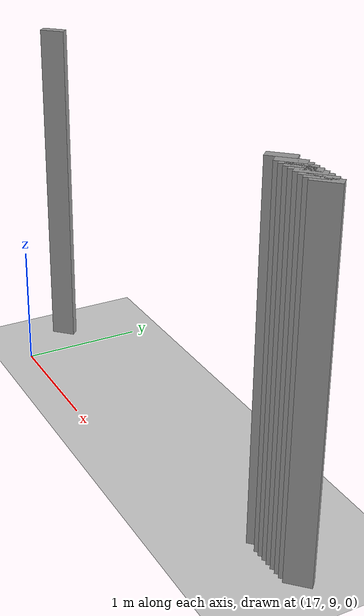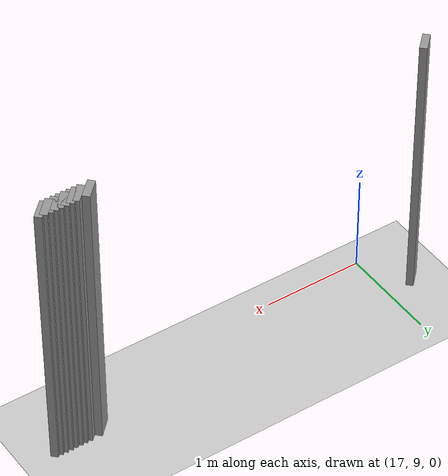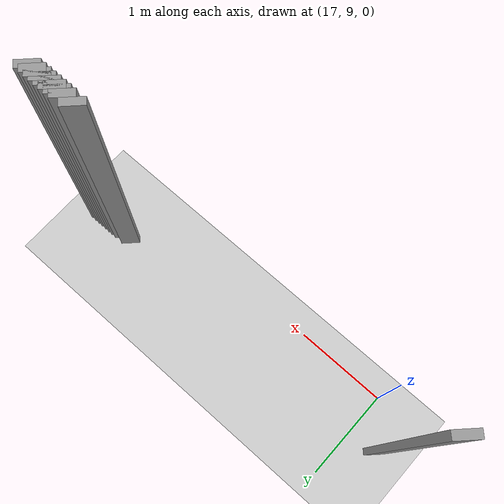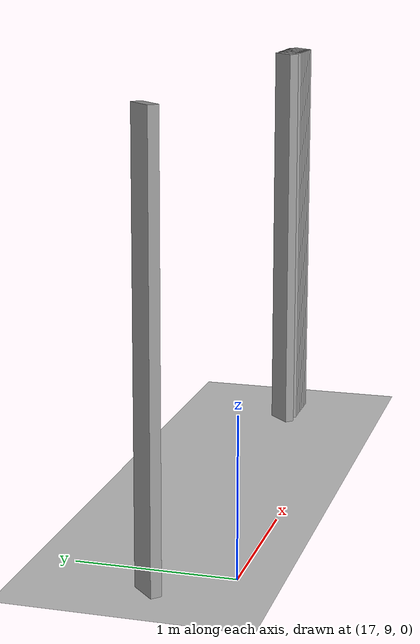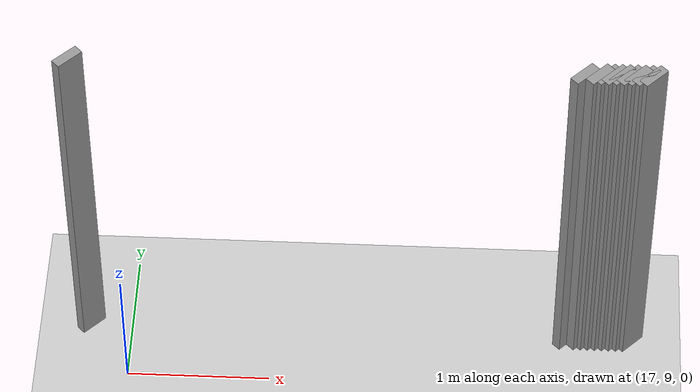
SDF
<sdf version="1.5">
 <world name="default">
  <include><uri>model://ground_plane</uri></include>
  <include><uri>model://sun</uri></include>
  <model name="grey_wall_3338">
   <static>1</static>
   <link name="link">
    <pose>16.7 9.45  1.4 0 0 -0.785398163397</pose>
    <collision name="collision"><geometry><box><size>0.0707106781187 .2  2.8</size></box></geometry></collision>
    <visual name="visual">
     <cast_shadows>0</cast_shadows>
     <geometry><box><size>0.0707106781187 .2  2.8</size></box></geometry>
     <material>
      <script>
       <uri>model://grey_wall/materials/scripts</uri>
       <uri>model://grey_wall/materials/textures</uri>
       <name>vrc/grey_wall</name>
      </script>
     </material>
    </visual>
   </link>
  </model>
  <model name="grey_wall_3339">
   <static>1</static>
   <link name="link">
    <pose>20.1 9.45  1.4 0 0 -0.785398163397</pose>
    <collision name="collision"><geometry><box><size>0.0707106781187 .2  2.8</size></box></geometry></collision>
    <visual name="visual">
     <cast_shadows>0</cast_shadows>
     <geometry><box><size>0.0707106781187 .2  2.8</size></box></geometry>
     <material>
      <script>
       <uri>model://grey_wall/materials/scripts</uri>
       <uri>model://grey_wall/materials/textures</uri>
       <name>vrc/grey_wall</name>
      </script>
     </material>
    </visual>
   </link>
  </model>
  <model name="grey_wall_3340">
   <static>1</static>
   <link name="link">
    <pose>20.2 9.45  1.4 0 0 -0.785398163397</pose>
    <collision name="collision"><geometry><box><size>0.0707106781187 .2  2.8</size></box></geometry></collision>
    <visual name="visual">
     <cast_shadows>0</cast_shadows>
     <geometry><box><size>0.0707106781187 .2  2.8</size></box></geometry>
     <material>
      <script>
       <uri>model://grey_wall/materials/scripts</uri>
       <uri>model://grey_wall/materials/textures</uri>
       <name>vrc/grey_wall</name>
      </script>
     </material>
    </visual>
   </link>
  </model>
  <model name="grey_wall_3341">
   <static>1</static>
   <link name="link">
    <pose>20.25 9.45  1.4 0 0 -0.785398163397</pose>
    <collision name="collision"><geometry><box><size>0.0707106781187 .2  2.8</size></box></geometry></collision>
    <visual name="visual">
     <cast_shadows>0</cast_shadows>
     <geometry><box><size>0.0707106781187 .2  2.8</size></box></geometry>
     <material>
      <script>
       <uri>model://grey_wall/materials/scripts</uri>
       <uri>model://grey_wall/materials/textures</uri>
       <name>vrc/grey_wall</name>
      </script>
     </material>
    </visual>
   </link>
  </model>
  <model name="grey_wall_3342">
   <static>1</static>
   <link name="link">
    <pose>20.3 9.45  1.4 0 0 -0.785398163397</pose>
    <collision name="collision"><geometry><box><size>0.0707106781187 .2  2.8</size></box></geometry></collision>
    <visual name="visual">
     <cast_shadows>0</cast_shadows>
     <geometry><box><size>0.0707106781187 .2  2.8</size></box></geometry>
     <material>
      <script>
       <uri>model://grey_wall/materials/scripts</uri>
       <uri>model://grey_wall/materials/textures</uri>
       <name>vrc/grey_wall</name>
      </script>
     </material>
    </visual>
   </link>
  </model>
  <model name="grey_wall_3343">
   <static>1</static>
   <link name="link">
    <pose>20.35 9.45  1.4 0 0 -0.785398163397</pose>
    <collision name="collision"><geometry><box><size>0.0707106781187 .2  2.8</size></box></geometry></collision>
    <visual name="visual">
     <cast_shadows>0</cast_shadows>
     <geometry><box><size>0.0707106781187 .2  2.8</size></box></geometry>
     <material>
      <script>
       <uri>model://grey_wall/materials/scripts</uri>
       <uri>model://grey_wall/materials/textures</uri>
       <name>vrc/grey_wall</name>
      </script>
     </material>
    </visual>
   </link>
  </model>
  <model name="grey_wall_3344">
   <static>1</static>
   <link name="link">
    <pose>20.4 9.45  1.4 0 0 -0.785398163397</pose>
    <collision name="collision"><geometry><box><size>0.0707106781187 .2  2.8</size></box></geometry></collision>
    <visual name="visual">
     <cast_shadows>0</cast_shadows>
     <geometry><box><size>0.0707106781187 .2  2.8</size></box></geometry>
     <material>
      <script>
       <uri>model://grey_wall/materials/scripts</uri>
       <uri>model://grey_wall/materials/textures</uri>
       <name>vrc/grey_wall</name>
      </script>
     </material>
    </visual>
   </link>
  </model>
  <model name="grey_wall_3345">
   <static>1</static>
   <link name="link">
    <pose>20.45 9.45  1.4 0 0 -0.785398163397</pose>
    <collision name="collision"><geometry><box><size>0.0707106781187 .2  2.8</size></box></geometry></collision>
    <visual name="visual">
     <cast_shadows>0</cast_shadows>
     <geometry><box><size>0.0707106781187 .2  2.8</size></box></geometry>
     <material>
      <script>
       <uri>model://grey_wall/materials/scripts</uri>
       <uri>model://grey_wall/materials/textures</uri>
       <name>vrc/grey_wall</name>
      </script>
     </material>
    </visual>
   </link>
  </model>
  <model name="grey_wall_3346">
   <static>1</static>
   <link name="link">
    <pose>20.5 9.45  1.4 0 0 -0.785398163397</pose>
    <collision name="collision"><geometry><box><size>0.0707106781187 .2  2.8</size></box></geometry></collision>
    <visual name="visual">
     <cast_shadows>0</cast_shadows>
     <geometry><box><size>0.0707106781187 .2  2.8</size></box></geometry>
     <material>
      <script>
       <uri>model://grey_wall/materials/scripts</uri>
       <uri>model://grey_wall/materials/textures</uri>
       <name>vrc/grey_wall</name>
      </script>
     </material>
    </visual>
   </link>
  </model>
  <model name="grey_wall_3347">
   <static>1</static>
   <link name="link">
    <pose>20.55 9.45  1.4 0 0 -0.785398163397</pose>
    <collision name="collision"><geometry><box><size>0.0707106781187 .2  2.8</size></box></geometry></collision>
    <visual name="visual">
     <cast_shadows>0</cast_shadows>
     <geometry><box><size>0.0707106781187 .2  2.8</size></box></geometry>
     <material>
      <script>
       <uri>model://grey_wall/materials/scripts</uri>
       <uri>model://grey_wall/materials/textures</uri>
       <name>vrc/grey_wall</name>
      </script>
     </material>
    </visual>
   </link>
  </model>
 </world>
</sdf>
